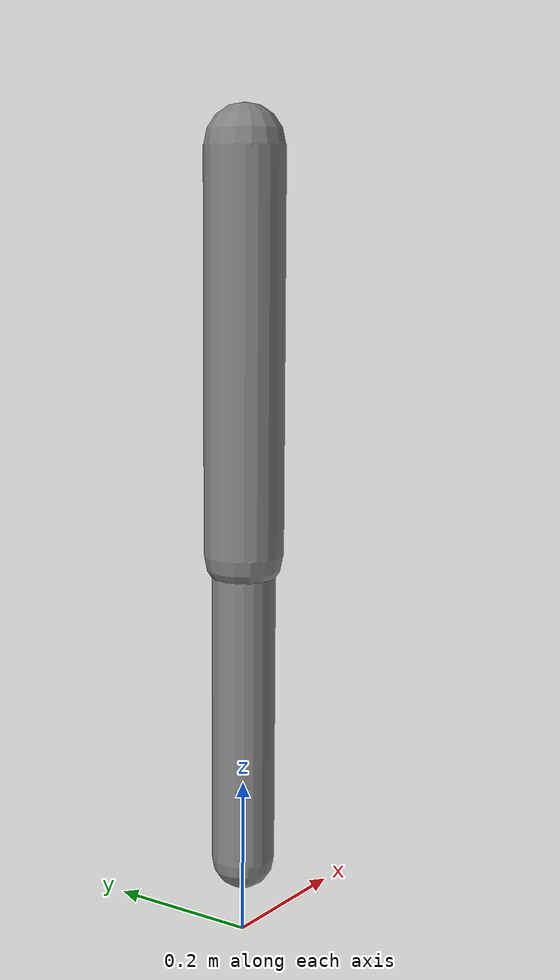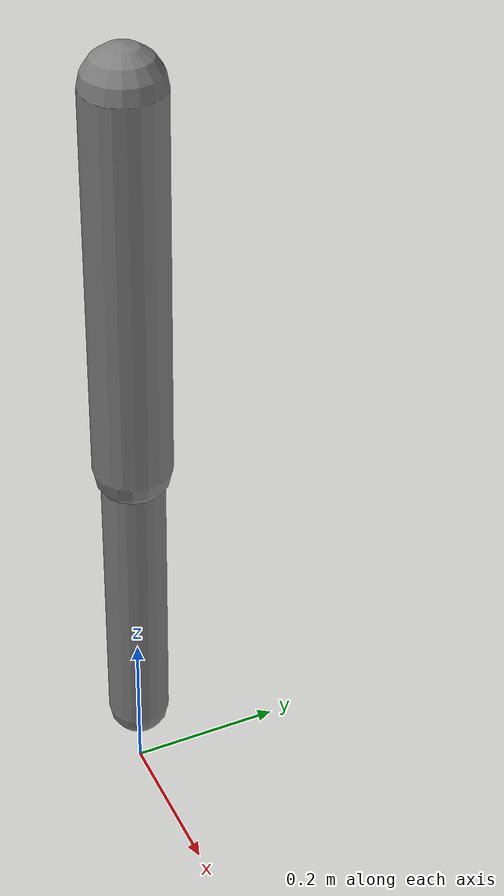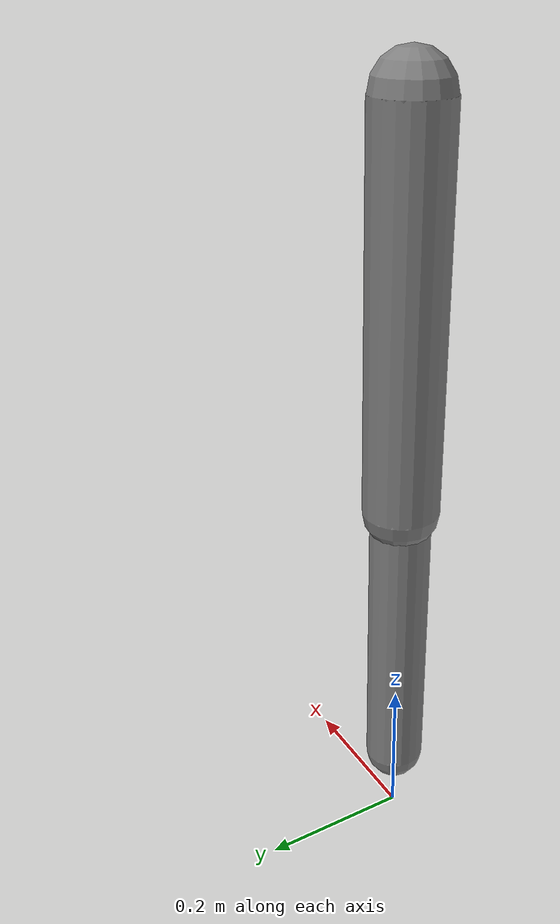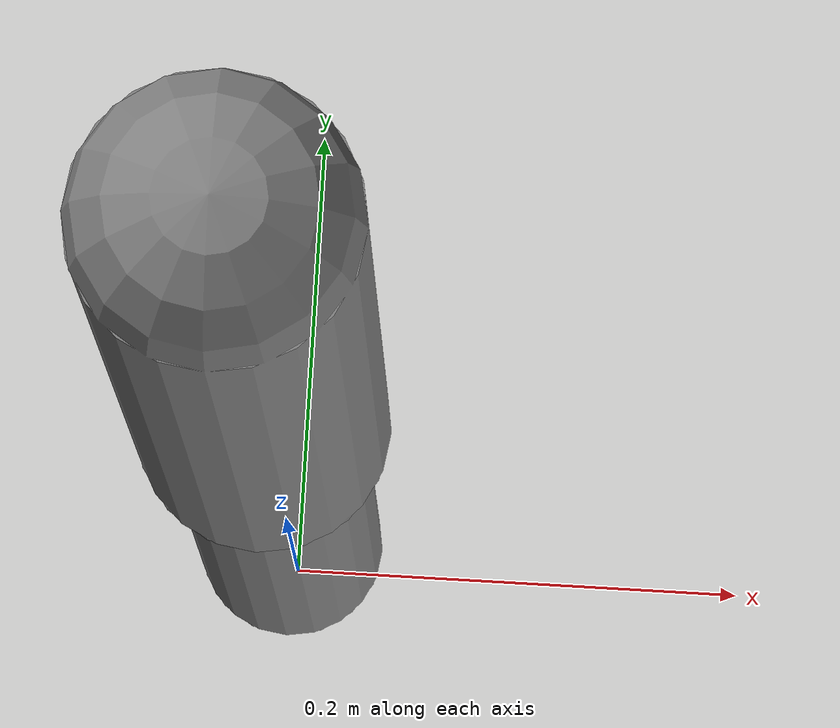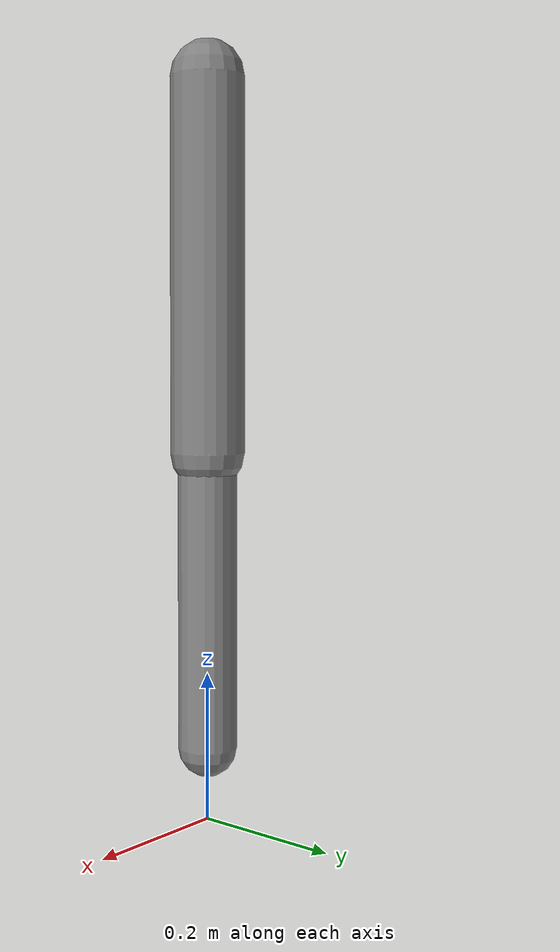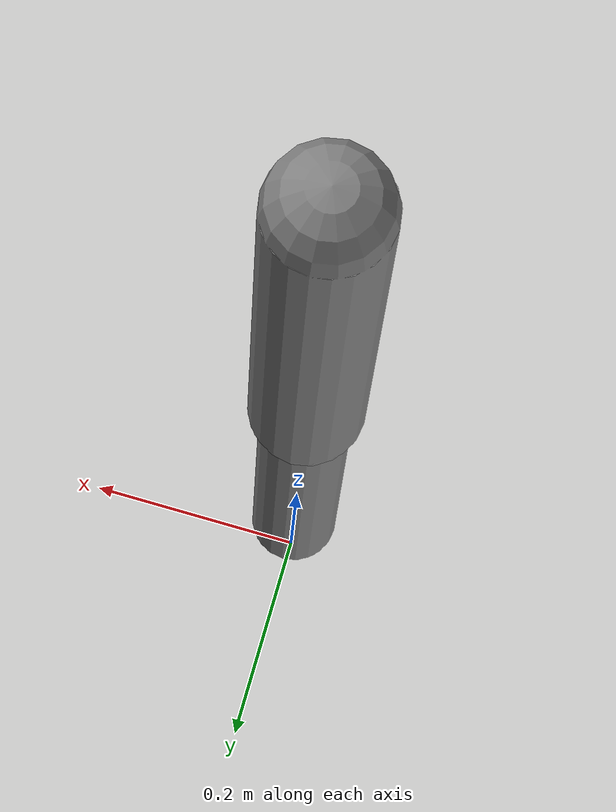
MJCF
<mujoco model="pos_act_conformance">
            <option gravity="0 0 -9.81" timestep="0.001"/>
            <worldbody>
                <body name="b1" pos="0 0 1">
                    <joint name="j1" type="hinge" axis="0 1 0"/>
                    <geom type="capsule" size="0.05" fromto="0 0 0 0 0 -0.5"/>
                    <site name="ee" pos="0 0 -0.5"/>
                    <body name="b2" pos="0 0 -0.5">
                        <joint name="j2" type="hinge" axis="0 1 0"/>
                        <geom type="capsule" size="0.04" fromto="0 0 0 0 0 -0.4"/>
                        <site name="wrist" pos="0 0 -0.2"/>
                    </body>
                </body>
                <site name="target" pos="0 0 0.5"/>
            </worldbody>
            <actuator>
                <position name="servo" site="wrist" refsite="target" kp="100"
                          gear="0 0 1 0 0 0"/>
            </actuator>
        </mujoco>
